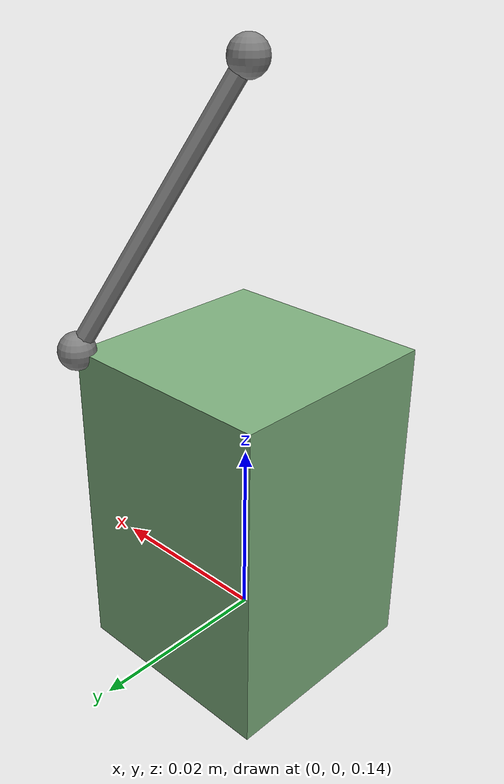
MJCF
<mujoco model="hanging_box">
  <worldbody>
    <body name="object" pos="0 0 0.154">
      <freejoint name="object_root" />
      <geom
        name="grasp_box"
        type="box"
        size="0.012 0.012 0.018"
        mass="0.05"
        rgba="0.5 0.7 0.5 1"
        friction="0.7 0.03 0.01"
        priority="1"
      />
      <site name="hook" pos="0.012 0.012 0.018" size="0.002" />
    </body>
    <body name="anchor" pos="0 0 0.2">
      <site name="anchor_site" size="0.002" />
    </body>
  </worldbody>

  <tendon>
    <spatial limited="true" range="0 0.02" width="0.001">
      <site site="hook" />
      <site site="anchor_site" />
    </spatial>
  </tendon>
</mujoco>
